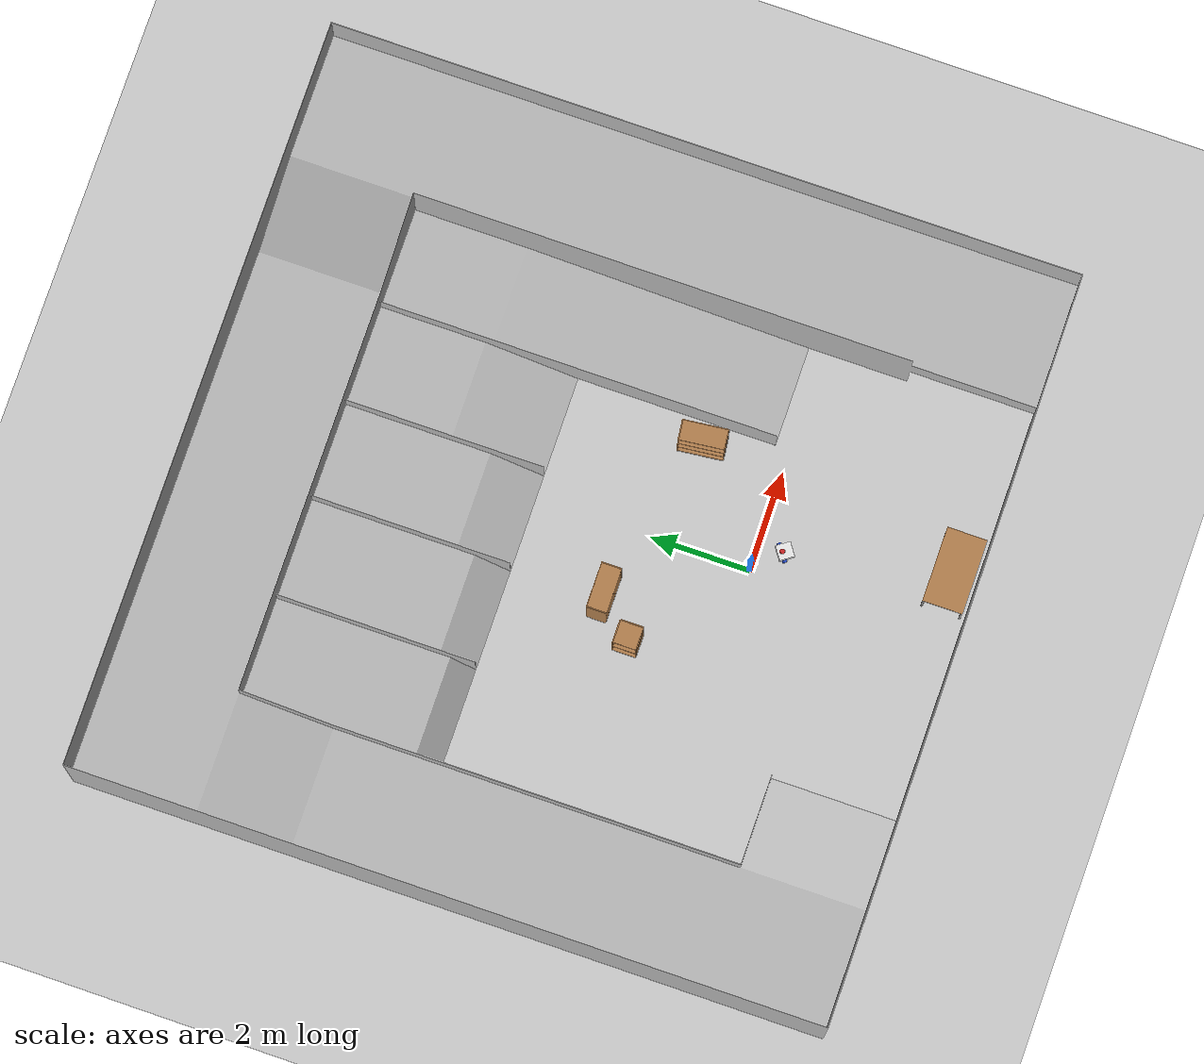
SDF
<sdf version="1.7">
 <world name="default">
  <light name="sun" type="directional">
   <pose>0 0 10 0 -0 0</pose>
   <diffuse>0.8 0.8 0.8 1</diffuse>
   <specular>0.2 0.2 0.2 1</specular>
   <attenuation>
    <range>1000</range>
    <constant>0.9</constant>
    <linear>0.01</linear>
    <quadratic>0.001</quadratic>
   </attenuation>
   <direction>-0.5 0.1 -0.9</direction>
   <spot><inner_angle>0</inner_angle><outer_angle>0</outer_angle><falloff>0</falloff></spot>
  </light>
  <model name="ground_plane">
   <static>1</static>
   <link name="link">
    <collision name="collision">
     <geometry><plane><normal>0 0 1</normal><size>100 100</size></plane></geometry>
     <surface><friction><ode><mu>100</mu><mu2>50</mu2></ode></friction></surface>
    </collision>
    <visual name="visual">
     <cast_shadows>0</cast_shadows>
     <geometry><plane><normal>0 0 1</normal><size>100 100</size></plane></geometry>
     <material>
      <script><uri>file://media/materials/scripts/gazebo.material</uri><name>Gazebo/Grey</name></script>
     </material>
    </visual>
   </link>
  </model>
  <gravity>0 0 -9.8</gravity>
  <magnetic_field>6e-06 2.3e-05 -4.2e-05</magnetic_field>
  <atmosphere type="adiabatic"/>
  <physics type="ode">
   <max_step_size>0.001</max_step_size>
   <real_time_factor>1</real_time_factor>
   <real_time_update_rate>1000</real_time_update_rate>
  </physics>
  <scene><ambient>0.4 0.4 0.4 1</ambient><background>0.7 0.7 0.7 1</background><shadows>1</shadows></scene>
  <audio><device>default</device></audio>
  <spherical_coordinates>
   <surface_model>EARTH_WGS84</surface_model>
   <latitude_deg>0</latitude_deg>
   <longitude_deg>0</longitude_deg>
   <elevation>0</elevation>
   <heading_deg>0</heading_deg>
  </spherical_coordinates>
  <model name="field">
   <link name="body">
    <visual name="visual">
     <geometry>
      <mesh>
       <scale>0.001 0.001 0.001</scale>
       <uri>/home/liang/dev_ws/src/my_bot/models/field/meshes/field.STL</uri>
      </mesh>
     </geometry>
    </visual>
    <collision name="fieldcollision">
     <geometry>
      <mesh>
       <scale>0.001 0.001 0.001</scale>
       <uri>/home/liang/dev_ws/src/my_bot/models/field/meshes/field.STL</uri>
      </mesh>
      <surface><friction><ode><mu>1.2</mu><mu2>1.2</mu2></ode></friction></surface>
     </geometry>
    </collision>
    <inertial>
     <inertia><ixx>1</ixx><ixy>0</ixy><ixz>0</ixz><iyy>1</iyy><iyz>0</iyz><izz>1</izz></inertia>
     <mass>1</mass>
    </inertial>
   </link>
   <pose>-8.02933 10.8258 -0.002583 1.57081 0.000417 0.001335</pose>
   <static>1</static>
  </model>
  <model name="bookshelf">
   <static>1</static>
   <link name="link">
    <inertial><mass>1</mass></inertial>
    <collision name="back">
     <pose>0 0.005 0.6 0 -0 0</pose>
     <geometry><box><size>0.9 0.01 1.2</size></box></geometry>
    </collision>
    <visual name="visual1">
     <pose>0 0.005 0.6 0 -0 0</pose>
     <geometry><box><size>0.9 0.01 1.2</size></box></geometry>
     <material>
      <script><uri>file://media/materials/scripts/gazebo.material</uri><name>Gazebo/Wood</name></script>
     </material>
    </visual>
    <collision name="left_side">
     <pose>0.45 -0.195 0.6 0 -0 0</pose>
     <geometry><box><size>0.02 0.4 1.2</size></box></geometry>
    </collision>
    <visual name="visual2">
     <pose>0.45 -0.195 0.6 0 -0 0</pose>
     <geometry><box><size>0.02 0.4 1.2</size></box></geometry>
     <material>
      <script><uri>file://media/materials/scripts/gazebo.material</uri><name>Gazebo/Wood</name></script>
     </material>
    </visual>
    <collision name="right_side">
     <pose>-0.45 -0.195 0.6 0 -0 0</pose>
     <geometry><box><size>0.02 0.4 1.2</size></box></geometry>
    </collision>
    <visual name="visual3">
     <pose>-0.45 -0.195 0.6 0 -0 0</pose>
     <geometry><box><size>0.02 0.4 1.2</size></box></geometry>
     <material>
      <script><uri>file://media/materials/scripts/gazebo.material</uri><name>Gazebo/Wood</name></script>
     </material>
    </visual>
    <collision name="bottom">
     <pose>0 -0.195 0.03 0 -0 0</pose>
     <geometry><box><size>0.88 0.4 0.06</size></box></geometry>
    </collision>
    <visual name="visual4">
     <pose>0 -0.195 0.03 0 -0 0</pose>
     <geometry><box><size>0.88 0.4 0.06</size></box></geometry>
     <material>
      <script><uri>file://media/materials/scripts/gazebo.material</uri><name>Gazebo/Wood</name></script>
     </material>
    </visual>
    <collision name="top">
     <pose>0 -0.195 1.19 0 -0 0</pose>
     <geometry><box><size>0.88 0.4 0.02</size></box></geometry>
    </collision>
    <visual name="visual5">
     <pose>0 -0.195 1.19 0 -0 0</pose>
     <geometry><box><size>0.88 0.4 0.02</size></box></geometry>
     <material>
      <script><uri>file://media/materials/scripts/gazebo.material</uri><name>Gazebo/Wood</name></script>
     </material>
    </visual>
    <collision name="low_shelf">
     <pose>0 -0.195 0.43 0 -0 0</pose>
     <geometry><box><size>0.88 0.4 0.02</size></box></geometry>
    </collision>
    <visual name="visual6">
     <pose>0 -0.195 0.43 0 -0 0</pose>
     <geometry><box><size>0.88 0.4 0.02</size></box></geometry>
     <material>
      <script><uri>file://media/materials/scripts/gazebo.material</uri><name>Gazebo/Wood</name></script>
     </material>
    </visual>
    <collision name="high_shelf">
     <pose>0 -0.195 0.8 0 -0 0</pose>
     <geometry><box><size>0.88 0.4 0.02</size></box></geometry>
    </collision>
    <visual name="visual7">
     <pose>0 -0.195 0.8 0 -0 0</pose>
     <geometry><box><size>0.88 0.4 0.02</size></box></geometry>
     <material>
      <script><uri>file://media/materials/scripts/gazebo.material</uri><name>Gazebo/Wood</name></script>
     </material>
    </visual>
   </link>
   <pose>-1.39057 2.6583 0 0 -0 0</pose>
  </model>
  <model name="cabinet">
   <static>1</static>
   <link name="cabinet_bottom_plate">
    <inertial>
     <pose>0 0 -1 0 -0 0</pose>
     <inertia><ixx>2.05</ixx><ixy>0</ixy><ixz>0</ixz><iyy>2.05</iyy><iyz>0</iyz><izz>2.05</izz></inertia>
     <mass>25</mass>
    </inertial>
    <collision name="cabinet_bottom_plate_geom">
     <pose>0 0 0.01 0 -0 0</pose>
     <geometry><box><size>0.45 0.45 0.02</size></box></geometry>
    </collision>
    <visual name="cabinet_bottom_plate_geom_visual">
     <pose>0 0 0.01 0 -0 0</pose>
     <geometry><box><size>0.45 0.45 0.02</size></box></geometry>
     <material>
      <script><uri>file://media/materials/scripts/gazebo.material</uri><name>Gazebo/Wood</name></script>
     </material>
    </visual>
    <collision name="cabinet_bottom_plate_geom_cabinet_back_plate">
     <pose>0.235 0 0.51 0 -0 0</pose>
     <geometry><box><size>0.02 0.45 1.02</size></box></geometry>
    </collision>
    <visual name="cabinet_bottom_plate_geom_cabinet_back_plate_visual">
     <pose>0.235 0 0.51 0 -0 0</pose>
     <geometry><box><size>0.02 0.45 1.02</size></box></geometry>
     <material>
      <script><uri>file://media/materials/scripts/gazebo.material</uri><name>Gazebo/Wood</name></script>
     </material>
    </visual>
    <collision name="cabinet_bottom_plate_geom_cabinet_left_plate">
     <pose>0 0.235 0.51 0 -0 0</pose>
     <geometry><box><size>0.45 0.02 1.02</size></box></geometry>
    </collision>
    <visual name="cabinet_bottom_plate_geom_cabinet_left_plate_visual">
     <pose>0 0.235 0.51 0 -0 0</pose>
     <geometry><box><size>0.45 0.02 1.02</size></box></geometry>
     <material>
      <script><uri>file://media/materials/scripts/gazebo.material</uri><name>Gazebo/Wood</name></script>
     </material>
    </visual>
    <collision name="cabinet_bottom_plate_geom_cabinet_middle_plate">
     <pose>0 0 0.51 0 -0 0</pose>
     <geometry><box><size>0.45 0.45 0.02</size></box></geometry>
    </collision>
    <visual name="cabinet_bottom_plate_geom_cabinet_middle_plate_visual">
     <pose>0 0 0.51 0 -0 0</pose>
     <geometry><box><size>0.45 0.45 0.02</size></box></geometry>
     <material>
      <script><uri>file://media/materials/scripts/gazebo.material</uri><name>Gazebo/Wood</name></script>
     </material>
    </visual>
    <collision name="cabinet_bottom_plate_geom_cabinet_right_plate">
     <pose>0 -0.235 0.51 0 -0 0</pose>
     <geometry><box><size>0.45 0.02 1.02</size></box></geometry>
    </collision>
    <visual name="cabinet_bottom_plate_geom_cabinet_right_plate_visual">
     <pose>0 -0.235 0.51 0 -0 0</pose>
     <geometry><box><size>0.45 0.02 1.02</size></box></geometry>
     <material>
      <script><uri>file://media/materials/scripts/gazebo.material</uri><name>Gazebo/Wood</name></script>
     </material>
    </visual>
    <collision name="cabinet_bottom_plate_geom_cabinet_top_plate">
     <pose>0 0 1.01 0 -0 0</pose>
     <geometry><box><size>0.45 0.45 0.02</size></box></geometry>
    </collision>
    <visual name="cabinet_bottom_plate_geom_cabinet_top_plate_visual">
     <pose>0 0 1.01 0 -0 0</pose>
     <geometry><box><size>0.45 0.45 0.02</size></box></geometry>
     <material>
      <script><uri>file://media/materials/scripts/gazebo.material</uri><name>Gazebo/Wood</name></script>
     </material>
    </visual>
   </link>
   <pose>-2.0743 1.74743 0 0 -0 0</pose>
  </model>
  <model name="bookshelf_0">
   <static>1</static>
   <link name="link">
    <inertial><mass>1</mass></inertial>
    <collision name="back">
     <pose>0 0.005 0.6 0 -0 0</pose>
     <geometry><box><size>0.9 0.01 1.2</size></box></geometry>
    </collision>
    <visual name="visual1">
     <pose>0 0.005 0.6 0 -0 0</pose>
     <geometry><box><size>0.9 0.01 1.2</size></box></geometry>
     <material>
      <script><uri>file://media/materials/scripts/gazebo.material</uri><name>Gazebo/Wood</name></script>
     </material>
    </visual>
    <collision name="left_side">
     <pose>0.45 -0.195 0.6 0 -0 0</pose>
     <geometry><box><size>0.02 0.4 1.2</size></box></geometry>
    </collision>
    <visual name="visual2">
     <pose>0.45 -0.195 0.6 0 -0 0</pose>
     <geometry><box><size>0.02 0.4 1.2</size></box></geometry>
     <material>
      <script><uri>file://media/materials/scripts/gazebo.material</uri><name>Gazebo/Wood</name></script>
     </material>
    </visual>
    <collision name="right_side">
     <pose>-0.45 -0.195 0.6 0 -0 0</pose>
     <geometry><box><size>0.02 0.4 1.2</size></box></geometry>
    </collision>
    <visual name="visual3">
     <pose>-0.45 -0.195 0.6 0 -0 0</pose>
     <geometry><box><size>0.02 0.4 1.2</size></box></geometry>
     <material>
      <script><uri>file://media/materials/scripts/gazebo.material</uri><name>Gazebo/Wood</name></script>
     </material>
    </visual>
    <collision name="bottom">
     <pose>0 -0.195 0.03 0 -0 0</pose>
     <geometry><box><size>0.88 0.4 0.06</size></box></geometry>
    </collision>
    <visual name="visual4">
     <pose>0 -0.195 0.03 0 -0 0</pose>
     <geometry><box><size>0.88 0.4 0.06</size></box></geometry>
     <material>
      <script><uri>file://media/materials/scripts/gazebo.material</uri><name>Gazebo/Wood</name></script>
     </material>
    </visual>
    <collision name="top">
     <pose>0 -0.195 1.19 0 -0 0</pose>
     <geometry><box><size>0.88 0.4 0.02</size></box></geometry>
    </collision>
    <visual name="visual5">
     <pose>0 -0.195 1.19 0 -0 0</pose>
     <geometry><box><size>0.88 0.4 0.02</size></box></geometry>
     <material>
      <script><uri>file://media/materials/scripts/gazebo.material</uri><name>Gazebo/Wood</name></script>
     </material>
    </visual>
    <collision name="low_shelf">
     <pose>0 -0.195 0.43 0 -0 0</pose>
     <geometry><box><size>0.88 0.4 0.02</size></box></geometry>
    </collision>
    <visual name="visual6">
     <pose>0 -0.195 0.43 0 -0 0</pose>
     <geometry><box><size>0.88 0.4 0.02</size></box></geometry>
     <material>
      <script><uri>file://media/materials/scripts/gazebo.material</uri><name>Gazebo/Wood</name></script>
     </material>
    </visual>
    <collision name="high_shelf">
     <pose>0 -0.195 0.8 0 -0 0</pose>
     <geometry><box><size>0.88 0.4 0.02</size></box></geometry>
    </collision>
    <visual name="visual7">
     <pose>0 -0.195 0.8 0 -0 0</pose>
     <geometry><box><size>0.88 0.4 0.02</size></box></geometry>
     <material>
      <script><uri>file://media/materials/scripts/gazebo.material</uri><name>Gazebo/Wood</name></script>
     </material>
    </visual>
   </link>
   <pose>2.19976 1.66016 0 0 0 -1.46154</pose>
  </model>
  <model name="my_bot">
   <link name="base_link">
    <inertial>
     <pose>0.055714 0 0.078571 0 -0 0</pose>
     <mass>0.7</mass>
     <inertia>
      <ixx>0.0064169</ixx>
      <ixy>0</ixy>
      <ixz>0.00118929</ixz>
      <iyy>0.00745405</iyy>
      <iyz>0</iyz>
      <izz>0.00876214</izz>
     </inertia>
    </inertial>
    <collision name="base_link_fixed_joint_lump__chassis_collision">
     <pose>0.05 0 0.075 0 -0 0</pose>
     <geometry><box><size>0.3 0.3 0.15</size></box></geometry>
    </collision>
    <collision name="base_link_fixed_joint_lump__caster_wheel_collision_1">
     <pose>0.14 0 0 0 -0 0</pose>
     <geometry><sphere><radius>0.05</radius></sphere></geometry>
     <surface><friction><ode><mu>0.001</mu><mu2>0.001</mu2></ode></friction></surface>
    </collision>
    <collision name="base_link_fixed_joint_lump__laser_frame_collision_2">
     <pose>0 0 0.175 0 -0 0</pose>
     <geometry><cylinder><length>0.04</length><radius>0.05</radius></cylinder></geometry>
    </collision>
    <visual name="base_link_fixed_joint_lump__chassis_visual">
     <pose>0.05 0 0.075 0 -0 0</pose>
     <geometry><box><size>0.3 0.3 0.15</size></box></geometry>
     <material>
      <script><name>Gazebo/White</name><uri>file://media/materials/scripts/gazebo.material</uri></script>
     </material>
    </visual>
    <visual name="base_link_fixed_joint_lump__camera_link_visual_1">
     <pose>0.205 0 0.08 0 -0 0</pose>
     <geometry><box><size>0.01 0.03 0.03</size></box></geometry>
     <material>
      <script><name>Gazebo/Red</name><uri>file://media/materials/scripts/gazebo.material</uri></script>
     </material>
    </visual>
    <visual name="base_link_fixed_joint_lump__caster_wheel_visual_2">
     <pose>0.14 0 0 0 -0 0</pose>
     <geometry><sphere><radius>0.05</radius></sphere></geometry>
     <material>
      <script><name>Gazebo/Black</name><uri>file://media/materials/scripts/gazebo.material</uri></script>
     </material>
    </visual>
    <visual name="base_link_fixed_joint_lump__laser_frame_visual_3">
     <pose>0 0 0.175 0 -0 0</pose>
     <geometry><cylinder><length>0.04</length><radius>0.05</radius></cylinder></geometry>
     <material>
      <script><name>Gazebo/Red</name><uri>file://media/materials/scripts/gazebo.material</uri></script>
     </material>
    </visual>
    <sensor name="camera" type="depth">
     <visualize>1</visualize>
     <update_rate>10</update_rate>
     <camera>
      <horizontal_fov>1.089</horizontal_fov>
      <image><format>B8G8R8</format><width>640</width><height>480</height></image>
      <clip><near>0.05</near><far>8</far></clip>
     </camera>
     <plugin name="camera_controller" filename="libgazebo_ros_camera.so">
      <frame_name>camera_link_optical</frame_name>
      <min_depth>0.1</min_depth>
      <max_depth>100.0</max_depth>
     </plugin>
     <pose>0.205 0 0.08 0 -0 0</pose>
    </sensor>
    <sensor name="laser" type="ray">
     <visualize>1</visualize>
     <update_rate>10</update_rate>
     <ray>
      <scan>
       <horizontal>
        <samples>360</samples>
        <min_angle>-3.14</min_angle>
        <max_angle>3.14</max_angle>
        <resolution>1</resolution>
       </horizontal>
       <vertical><samples>1</samples><min_angle>0</min_angle><max_angle>0</max_angle></vertical>
      </scan>
      <range><min>0.3</min><max>12</max></range>
     </ray>
     <plugin name="laser_controller" filename="libgazebo_ros_ray_sensor.so">
      <ros><argument>~/out:=scan</argument></ros>
      <output_type>sensor_msgs/LaserScan</output_type>
      <frame_name>laser_frame</frame_name>
     </plugin>
     <pose>0 0 0.175 0 -0 0</pose>
    </sensor>
   </link>
   <joint name="left_wheel_joint" type="revolute">
    <pose relative_to="base_link">0 0.175 0 -1.5708 0 0</pose>
    <parent>base_link</parent>
    <child>left_wheel</child>
    <axis>
     <xyz>0 0 1</xyz>
     <limit><lower>-1e+16</lower><upper>1e+16</upper></limit>
     <dynamics><spring_reference>0</spring_reference><spring_stiffness>0</spring_stiffness></dynamics>
    </axis>
   </joint>
   <link name="left_wheel">
    <pose relative_to="left_wheel_joint">0 0 0 0 -0 0</pose>
    <inertial>
     <mass>0.1</mass>
     <inertia>
      <ixx>7.58333e-05</ixx>
      <ixy>0</ixy>
      <ixz>0</ixz>
      <iyy>7.58333e-05</iyy>
      <iyz>0</iyz>
      <izz>0.000125</izz>
     </inertia>
    </inertial>
    <collision name="left_wheel_collision">
     <geometry><cylinder><length>0.04</length><radius>0.05</radius></cylinder></geometry>
    </collision>
    <visual name="left_wheel_visual">
     <geometry><cylinder><length>0.04</length><radius>0.05</radius></cylinder></geometry>
     <material>
      <script><name>Gazebo/Blue</name><uri>file://media/materials/scripts/gazebo.material</uri></script>
     </material>
    </visual>
   </link>
   <joint name="right_wheel_joint" type="revolute">
    <pose relative_to="base_link">0 -0.175 0 1.5708 -0 0</pose>
    <parent>base_link</parent>
    <child>right_wheel</child>
    <axis>
     <xyz>0 0 -1</xyz>
     <limit><lower>-1e+16</lower><upper>1e+16</upper></limit>
     <dynamics><spring_reference>0</spring_reference><spring_stiffness>0</spring_stiffness></dynamics>
    </axis>
   </joint>
   <link name="right_wheel">
    <pose relative_to="right_wheel_joint">0 0 0 0 -0 0</pose>
    <inertial>
     <mass>0.1</mass>
     <inertia>
      <ixx>7.58333e-05</ixx>
      <ixy>0</ixy>
      <ixz>0</ixz>
      <iyy>7.58333e-05</iyy>
      <iyz>0</iyz>
      <izz>0.000125</izz>
     </inertia>
    </inertial>
    <collision name="right_wheel_collision">
     <geometry><cylinder><length>0.04</length><radius>0.05</radius></cylinder></geometry>
    </collision>
    <visual name="right_wheel_visual">
     <geometry><cylinder><length>0.04</length><radius>0.05</radius></cylinder></geometry>
     <material>
      <script><name>Gazebo/Blue</name><uri>file://media/materials/scripts/gazebo.material</uri></script>
     </material>
    </visual>
   </link>
   <static>0</static>
   <plugin name="diff_drive" filename="libgazebo_ros_diff_drive.so">
    <left_joint>left_wheel_joint</left_joint>
    <right_joint>right_wheel_joint</right_joint>
    <wheel_separation>0.35</wheel_separation>
    <wheel_diameter>0.1</wheel_diameter>
    <max_wheel_torque>200</max_wheel_torque>
    <max_wheel_acceleration>10.0</max_wheel_acceleration>
    <odometry_frame>odom</odometry_frame>
    <robot_base_frame>base_link</robot_base_frame>
    <publish_odom>1</publish_odom>
    <publish_odom_tf>1</publish_odom_tf>
    <publish_wheel_tf>1</publish_wheel_tf>
   </plugin>
   <pose>0.527516 -0.478773 0.05 0 1.2e-05 -0.958775</pose>
  </model>
  <model name="table">
   <static>1</static>
   <link name="link">
    <collision name="surface">
     <pose>0 0 1 0 -0 0</pose>
     <geometry><box><size>1.5 0.8 0.03</size></box></geometry>
     <surface><friction><ode><mu>0.6</mu><mu2>0.6</mu2></ode></friction></surface>
    </collision>
    <visual name="visual1">
     <pose>0 0 1 0 -0 0</pose>
     <geometry><box><size>1.5 0.8 0.03</size></box></geometry>
     <material>
      <script><uri>file://media/materials/scripts/gazebo.material</uri><name>Gazebo/Wood</name></script>
     </material>
    </visual>
    <collision name="front_left_leg">
     <pose>0.68 0.38 0.5 0 -0 0</pose>
     <geometry><cylinder><radius>0.02</radius><length>1</length></cylinder></geometry>
    </collision>
    <visual name="front_left_leg">
     <pose>0.68 0.38 0.5 0 -0 0</pose>
     <geometry><cylinder><radius>0.02</radius><length>1</length></cylinder></geometry>
     <material>
      <script><uri>file://media/materials/scripts/gazebo.material</uri><name>Gazebo/Grey</name></script>
     </material>
    </visual>
    <collision name="front_right_leg">
     <pose>0.68 -0.38 0.5 0 -0 0</pose>
     <geometry><cylinder><radius>0.02</radius><length>1</length></cylinder></geometry>
    </collision>
    <visual name="front_right_leg">
     <pose>0.68 -0.38 0.5 0 -0 0</pose>
     <geometry><cylinder><radius>0.02</radius><length>1</length></cylinder></geometry>
     <material>
      <script><uri>file://media/materials/scripts/gazebo.material</uri><name>Gazebo/Grey</name></script>
     </material>
    </visual>
    <collision name="back_right_leg">
     <pose>-0.68 -0.38 0.5 0 -0 0</pose>
     <geometry><cylinder><radius>0.02</radius><length>1</length></cylinder></geometry>
    </collision>
    <visual name="back_right_leg">
     <pose>-0.68 -0.38 0.5 0 -0 0</pose>
     <geometry><cylinder><radius>0.02</radius><length>1</length></cylinder></geometry>
     <material>
      <script><uri>file://media/materials/scripts/gazebo.material</uri><name>Gazebo/Grey</name></script>
     </material>
    </visual>
    <collision name="back_left_leg">
     <pose>-0.68 0.38 0.5 0 -0 0</pose>
     <geometry><cylinder><radius>0.02</radius><length>1</length></cylinder></geometry>
    </collision>
    <visual name="back_left_leg">
     <pose>-0.68 0.38 0.5 0 -0 0</pose>
     <geometry><cylinder><radius>0.02</radius><length>1</length></cylinder></geometry>
     <material>
      <script><uri>file://media/materials/scripts/gazebo.material</uri><name>Gazebo/Grey</name></script>
     </material>
    </visual>
   </link>
   <pose>1.12647 -3.70079 -0.035802 0 -0 0</pose>
  </model>
 </world>
</sdf>
